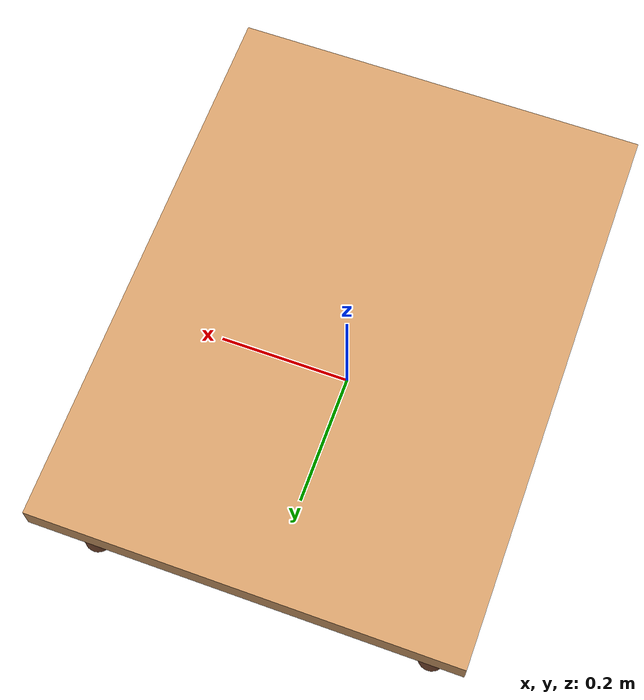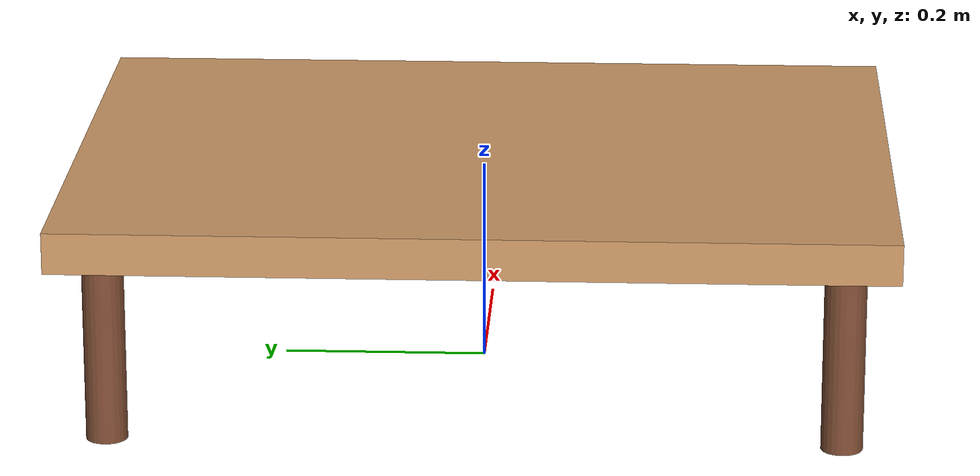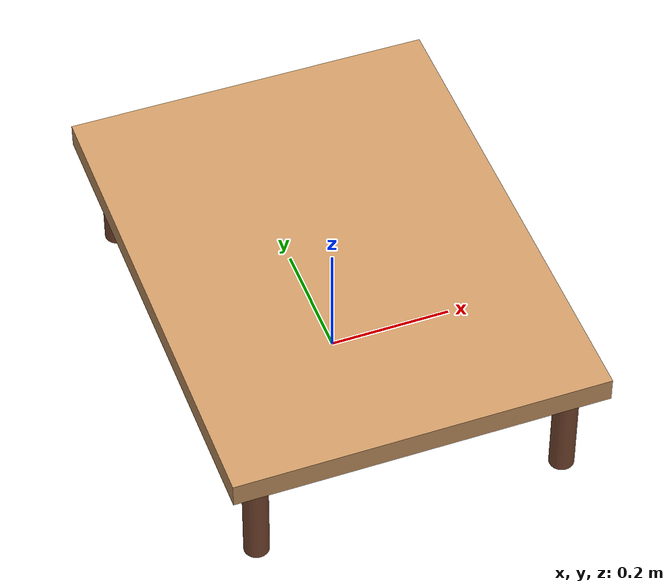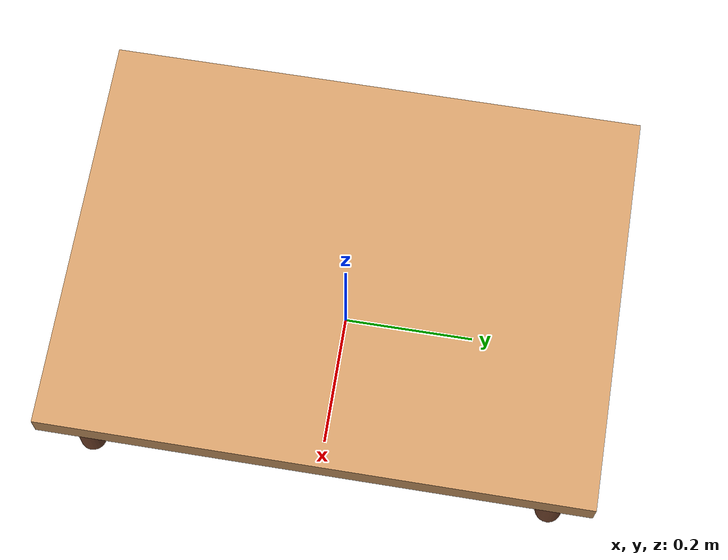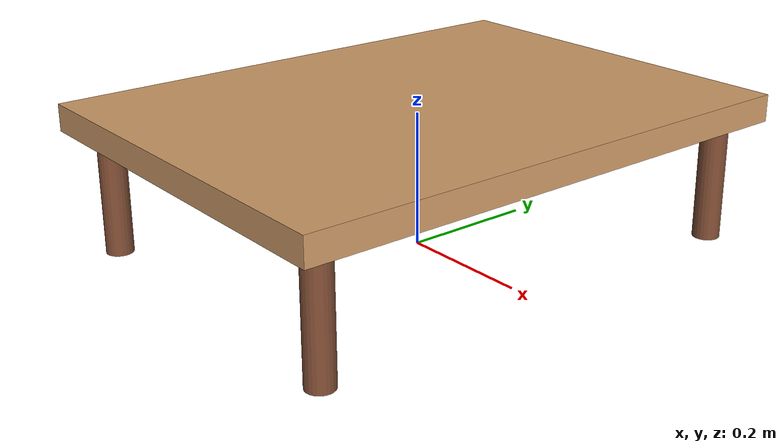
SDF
<?xml version="1.0"?>
<sdf version="1.7">
  <model name="small_table">
    <static>true</static>
    <pose>0 0 0 0 0 1.57</pose>

    <!-- Table Top -->
    <link name="table_top">
      <pose>0 0 0.2 0 0 0</pose>
      <collision name="table_top_collision">
        <geometry>
          <box>
            <size>0.8 0.6 0.04</size>
          </box>
        </geometry>
      </collision>
      <visual name="table_top_visual">
        <geometry>
          <box>
            <size>0.8 0.6 0.04</size>
          </box>
        </geometry>
        <material>
          <ambient>0.8 0.6 0.4 1</ambient>
          <diffuse>0.8 0.6 0.4 1</diffuse>
          <specular>0.1 0.1 0.1 1</specular>
        </material>
      </visual>
    </link>

    <!-- Leg 1 (Front Left) -->
    <link name="leg_1">
      <pose>0.35 0.25 0.1 0 0 0</pose>
      <collision name="leg_1_collision">
        <geometry>
          <cylinder>
            <radius>0.02</radius>
            <length>0.2</length>
          </cylinder>
        </geometry>
      </collision>
      <visual name="leg_1_visual">
        <geometry>
          <cylinder>
            <radius>0.02</radius>
            <length>0.2</length>
          </cylinder>
        </geometry>
        <material>
          <ambient>0.5 0.3 0.2 1</ambient>
          <diffuse>0.5 0.3 0.2 1</diffuse>
          <specular>0.1 0.1 0.1 1</specular>
        </material>
      </visual>
    </link>

    <!-- Leg 2 (Front Right) -->
    <link name="leg_2">
      <pose>-0.35 0.25 0.1 0 0 0</pose>
      <collision name="leg_2_collision">
        <geometry>
          <cylinder>
            <radius>0.02</radius>
            <length>0.2</length>
          </cylinder>
        </geometry>
      </collision>
      <visual name="leg_2_visual">
        <geometry>
          <cylinder>
            <radius>0.02</radius>
            <length>0.2</length>
          </cylinder>
        </geometry>
        <material>
          <ambient>0.5 0.3 0.2 1</ambient>
          <diffuse>0.5 0.3 0.2 1</diffuse>
          <specular>0.1 0.1 0.1 1</specular>
        </material>
      </visual>
    </link>

    <!-- Leg 3 (Back Left) -->
    <link name="leg_3">
      <pose>0.35 -0.25 0.1 0 0 0</pose>
      <collision name="leg_3_collision">
        <geometry>
          <cylinder>
            <radius>0.02</radius>
            <length>0.2</length>
          </cylinder>
        </geometry>
      </collision>
      <visual name="leg_3_visual">
        <geometry>
          <cylinder>
            <radius>0.02</radius>
            <length>0.2</length>
          </cylinder>
        </geometry>
        <material>
          <ambient>0.5 0.3 0.2 1</ambient>
          <diffuse>0.5 0.3 0.2 1</diffuse>
          <specular>0.1 0.1 0.1 1</specular>
        </material>
      </visual>
    </link>

    <!-- Leg 4 (Back Right) -->
    <link name="leg_4">
      <pose>-0.35 -0.25 0.1 0 0 0</pose>
      <collision name="leg_4_collision">
        <geometry>
          <cylinder>
            <radius>0.02</radius>
            <length>0.2</length>
          </cylinder>
        </geometry>
      </collision>
      <visual name="leg_4_visual">
        <geometry>
          <cylinder>
            <radius>0.02</radius>
            <length>0.2</length>
          </cylinder>
        </geometry>
        <material>
          <ambient>0.5 0.3 0.2 1</ambient>
          <diffuse>0.5 0.3 0.2 1</diffuse>
          <specular>0.1 0.1 0.1 1</specular>
        </material>
      </visual>
    </link>

    <!-- Joints to connect legs to table top -->
    <joint name="table_top_to_leg_1" type="fixed">
      <parent>table_top</parent>
      <child>leg_1</child>
    </joint>

    <joint name="table_top_to_leg_2" type="fixed">
      <parent>table_top</parent>
      <child>leg_2</child>
    </joint>

    <joint name="table_top_to_leg_3" type="fixed">
      <parent>table_top</parent>
      <child>leg_3</child>
    </joint>

    <joint name="table_top_to_leg_4" type="fixed">
      <parent>table_top</parent>
      <child>leg_4</child>
    </joint>

  </model>
</sdf>
